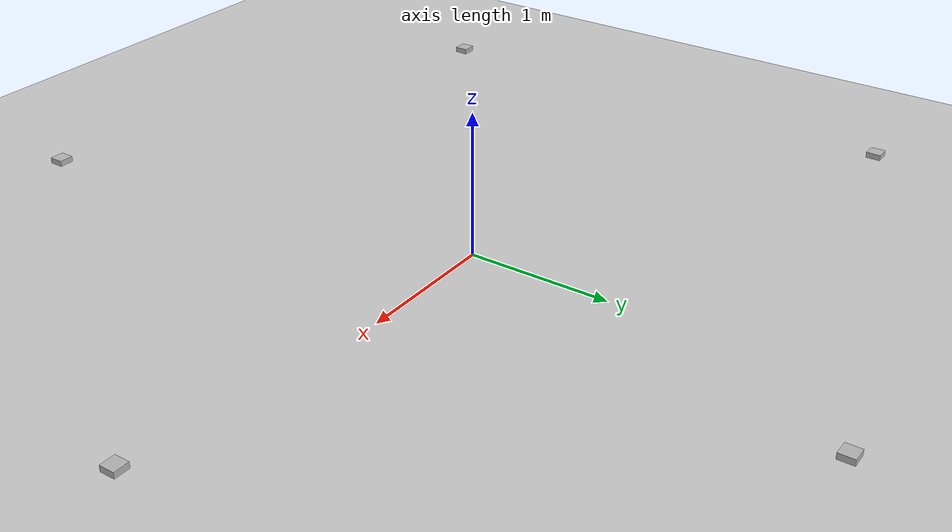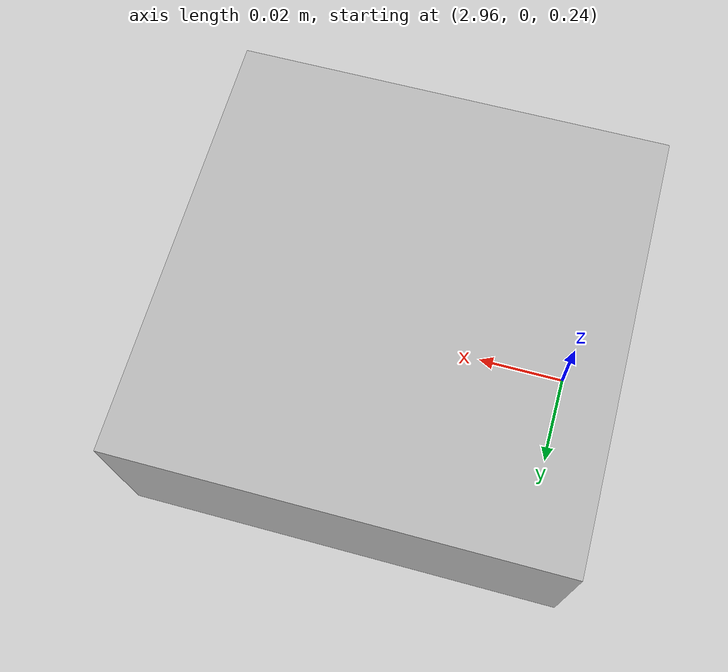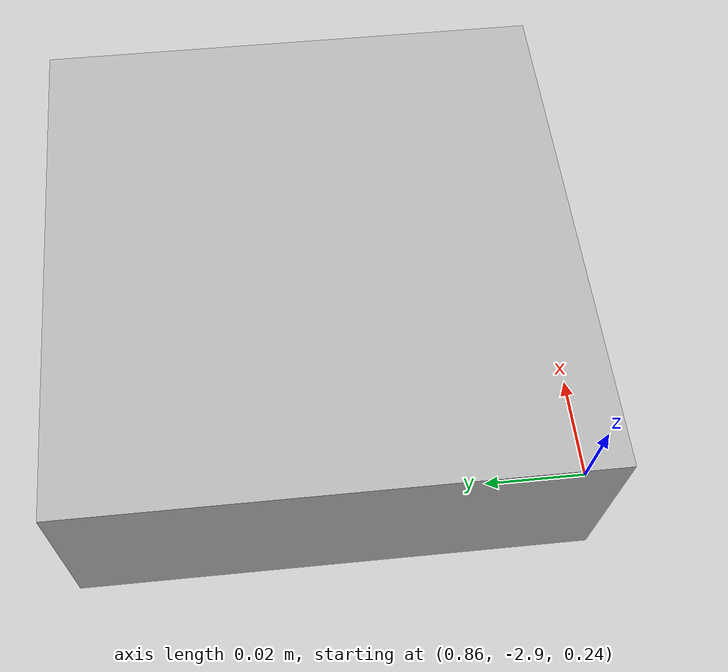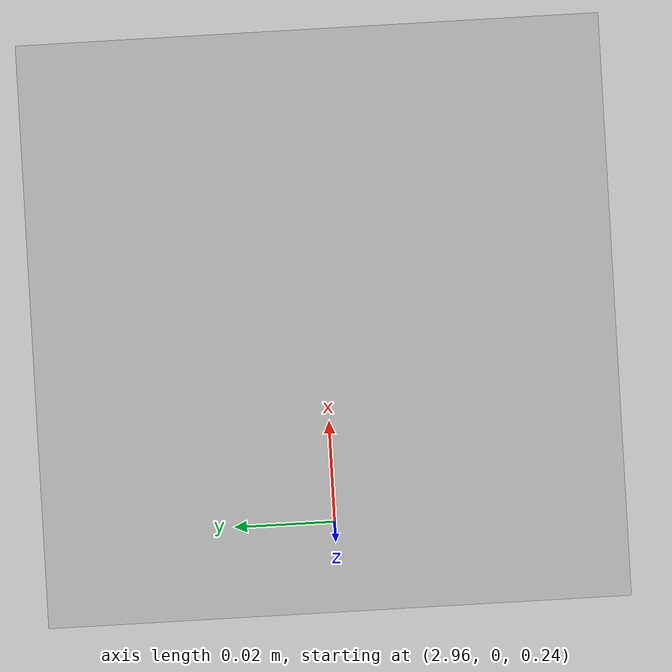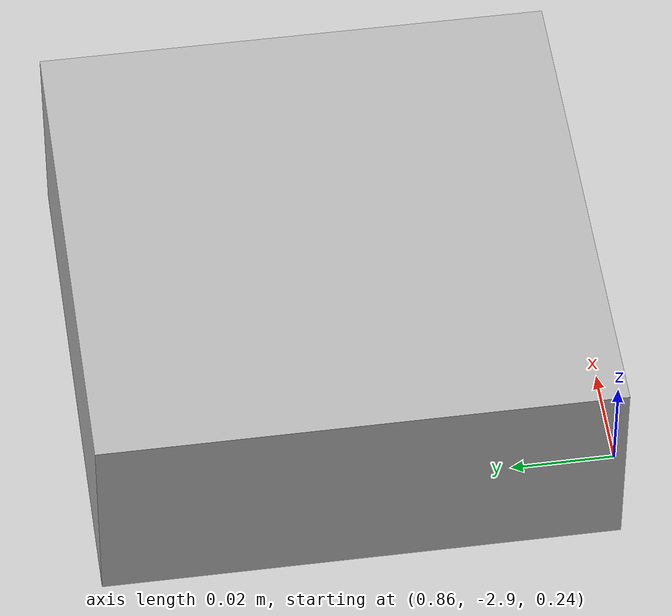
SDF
<sdf version='1.10'>
  <world name='empty'>
    <physics name='1ms' type='ignored'>
      <max_step_size>0.001</max_step_size>
      <real_time_factor>1</real_time_factor>
      <real_time_update_rate>1000</real_time_update_rate>
    </physics>
    <plugin name='gz::sim::systems::Physics' filename='gz-sim-physics-system'/>
    <plugin name='gz::sim::systems::UserCommands' filename='gz-sim-user-commands-system'/>
    <plugin name='gz::sim::systems::SceneBroadcaster' filename='gz-sim-scene-broadcaster-system'/>
    <plugin name='gz::sim::systems::Contact' filename='gz-sim-contact-system'/>
    <plugin name='gz::sim::systems::Sensors' filename='gz-sim-sensors-system'>
      <render_engine>ogre2</render_engine>
    </plugin>
    <plugin name='gz::sim::systems::Imu' filename='gz-sim-imu-system'/>
    <plugin name='gz::sim::systems::NavSat' filename='gz-sim-navsat-system'/>
    <spherical_coordinates>
      <surface_model>EARTH_WGS84</surface_model>
      <world_frame_orientation>ENU</world_frame_orientation>
      <latitude_deg>47.478949999999998</latitude_deg>
      <longitude_deg>19.057784999999999</longitude_deg>
      <elevation>0</elevation>
      <heading_deg>0</heading_deg>
    </spherical_coordinates>
    <gravity>0 0 -9.8000000000000007</gravity>
    <magnetic_field>5.5644999999999998e-06 2.2875799999999999e-05 -4.2388400000000002e-05</magnetic_field>
    <atmosphere type='adiabatic'/>
    <scene>
      <ambient>0.400000006 0.400000006 0.400000006 1</ambient>
      <background>0.699999988 0.699999988 0.699999988 1</background>
      <shadows>true</shadows>
    </scene>
    <model name='ground_plane'>
      <static>true</static>
      <link name='link'>
        <collision name='collision'>
          <geometry>
            <plane>
              <normal>0 0 1</normal>
              <size>100 100</size>
            </plane>
          </geometry>
          <surface>
            <friction>
              <ode>
                <mu>50</mu>
              </ode>
            </friction>
            <bounce/>
            <contact/>
          </surface>
        </collision>
        <visual name='visual'>
          <geometry>
            <plane>
              <normal>0 0 1</normal>
              <size>100 100</size>
            </plane>
          </geometry>
          <material>
            <ambient>0.800000012 0.800000012 0.800000012 1</ambient>
            <diffuse>0.800000012 0.800000012 0.800000012 1</diffuse>
            <specular>0.800000012 0.800000012 0.800000012 1</specular>
          </material>
        </visual>
        <pose>0 0 0 0 0 0</pose>
        <inertial>
          <pose>0 0 0 0 0 0</pose>
          <mass>1</mass>
          <inertia>
            <ixx>1</ixx>
            <ixy>0</ixy>
            <ixz>0</ixz>
            <iyy>1</iyy>
            <iyz>0</iyz>
            <izz>1</izz>
          </inertia>
        </inertial>
        <enable_wind>false</enable_wind>
      </link>
      <pose>0 0 0 0 0 0</pose>
      <self_collide>false</self_collide>
    </model>
    <include>
      <uri>model://aruco_box4</uri>
      <name>aruco_box4</name>
      <pose>-2.42 -1.76 0.25 0 0 0</pose>
    </include>
    <include>
      <uri>model://aruco_box2</uri>
      <name>aruco_box2</name>
      <pose>0.9 2.85 0.25 0 0 0</pose>
    </include>
    <include>
      <uri>model://aruco_box1</uri>
      <name>aruco_box1</name>
      <pose>3 0 0.25 0 0 0</pose>
    </include>
    <include>
      <uri>model://aruco_box5</uri>
      <name>aruco_box5</name>
      <pose>0.9 -2.85 0.25 0 0 0</pose>
    </include>
    <include>
      <uri>model://aruco_box3</uri>
      <name>aruco_box3</name>
      <pose>-2.42 1.76 0.25 0 0 0</pose>
    </include>

    <light name='sun' type='directional'>
      <pose>0 0 10 0 0 0</pose>
      <cast_shadows>true</cast_shadows>
      <intensity>1</intensity>
      <direction>-0.5 0.10000000000000001 -0.90000000000000002</direction>
      <diffuse>0.800000012 0.800000012 0.800000012 1</diffuse>
      <specular>0.200000003 0.200000003 0.200000003 1</specular>
      <attenuation>
        <range>1000</range>
        <linear>0.01</linear>
        <constant>0.90000000000000002</constant>
        <quadratic>0.001</quadratic>
      </attenuation>
      <spot>
        <inner_angle>0</inner_angle>
        <outer_angle>0</outer_angle>
        <falloff>0</falloff>
      </spot>
    </light>
  </world>
</sdf>

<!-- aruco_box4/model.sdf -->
<sdf version='1.9'>
  <model name='aruco_box'>
    <pose>0 0 0 0 0 0</pose>
    <link name='link'>
      <inertial auto="true" />
      <collision name="collision">
        <density>212.5</density>
        <geometry>
          <mesh>
            <uri>model://aruco_box4/model.dae</uri>
            <scale>1 1 1</scale>
          </mesh>
        </geometry>
      </collision>
      <visual name='aruco_box_mesh'>
        <geometry>
          <mesh>
            <uri>model://aruco_box4/model.dae</uri>
            <scale>1 1 1</scale>
          </mesh>
        </geometry>
      </visual>
    </link>
  </model>
</sdf>

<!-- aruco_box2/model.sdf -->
<sdf version='1.9'>
  <model name='aruco_box'>
    <pose>0 0 0 0 0 0</pose>
    <link name='link'>
      <inertial auto="true" />
      <collision name="collision">
        <density>212.5</density>
        <geometry>
          <mesh>
            <uri>model://aruco_box2/model.dae</uri>
            <scale>1 1 1</scale>
          </mesh>
        </geometry>
      </collision>
      <visual name='aruco_box_mesh'>
        <geometry>
          <mesh>
            <uri>model://aruco_box2/model.dae</uri>
            <scale>1 1 1</scale>
          </mesh>
        </geometry>
      </visual>
    </link>
  </model>
</sdf>

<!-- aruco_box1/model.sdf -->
<sdf version='1.9'>
  <model name='aruco_box'>
    <pose>0 0 0 0 0 0</pose>
    <link name='link'>
      <inertial auto="true" />
      <collision name="collision">
        <density>212.5</density>
        <geometry>
          <mesh>
            <uri>model://aruco_box1/model.dae</uri>
            <scale>1 1 1</scale>
          </mesh>
        </geometry>
      </collision>
      <visual name='aruco_box_mesh'>
        <geometry>
          <mesh>
            <uri>model://aruco_box1/model.dae</uri>
            <scale>1 1 1</scale>
          </mesh>
        </geometry>
      </visual>
    </link>
  </model>
</sdf>

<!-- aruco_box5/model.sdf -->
<sdf version='1.9'>
  <model name='aruco_box'>
    <pose>0 0 0 0 0 0</pose>
    <link name='link'>
      <inertial auto="true" />
      <collision name="collision">
        <density>212.5</density>
        <geometry>
          <mesh>
            <uri>model://aruco_box5/model.dae</uri>
            <scale>1 1 1</scale>
          </mesh>
        </geometry>
      </collision>
      <visual name='aruco_box_mesh'>
        <geometry>
          <mesh>
            <uri>model://aruco_box5/model.dae</uri>
            <scale>1 1 1</scale>
          </mesh>
        </geometry>
      </visual>
    </link>
  </model>
</sdf>

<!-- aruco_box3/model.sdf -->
<sdf version='1.9'>
  <model name='aruco_box'>
    <pose>0 0 0 0 0 0</pose>
    <link name='link'>
      <inertial auto="true" />
      <collision name="collision">
        <density>212.5</density>
        <geometry>
          <mesh>
            <uri>model://aruco_box3/model.dae</uri>
            <scale>1 1 1</scale>
          </mesh>
        </geometry>
      </collision>
      <visual name='aruco_box_mesh'>
        <geometry>
          <mesh>
            <uri>model://aruco_box3/model.dae</uri>
            <scale>1 1 1</scale>
          </mesh>
        </geometry>
      </visual>
    </link>
  </model>
</sdf>
